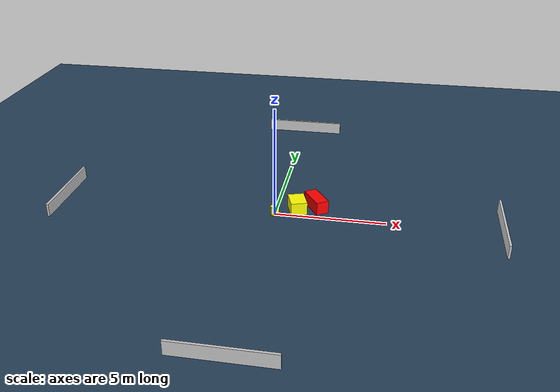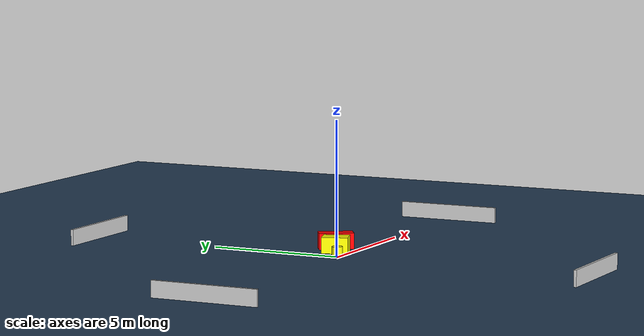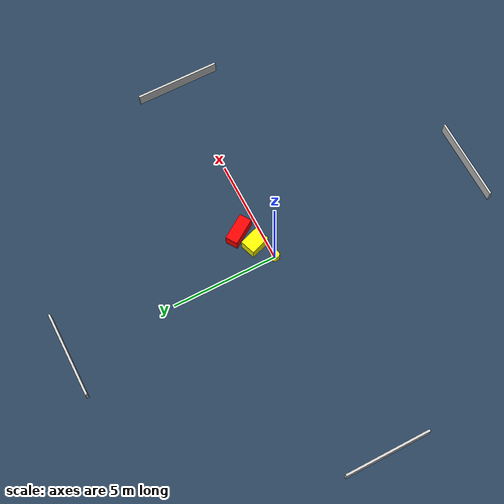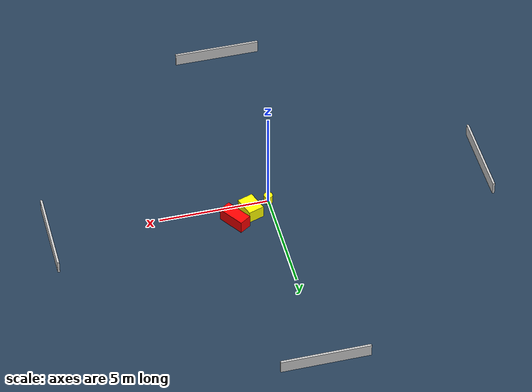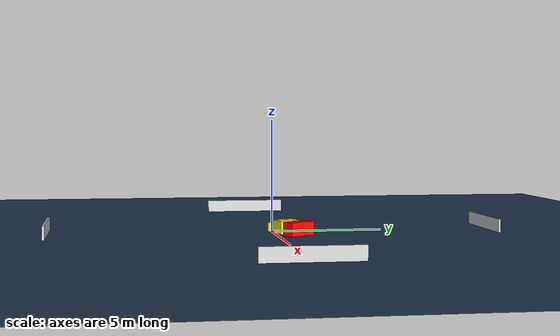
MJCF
<?xml version="1.0" ?>
<mujoco model="generated_environment">
  <option timestep="0.01" integrator="RK4" cone="elliptic"/>
  <default>
    <geom density="1"/>
  </default>
  <asset>
    <texture builtin="gradient" height="3072" name="skybox" rgb1="0.3 0.5 0.7" rgb2="0 0 0" type="skybox" width="512"/>
    <texture builtin="checker" height="300" name="groundplane" rgb1="0.2 0.3 0.4" rgb2="0.1 0.2 0.3" type="2d" width="300"/>
    <material name="groundplane" reflectance="0.2" texrepeat="5 5" texture="groundplane"/>
  </asset>
  <worldbody>
    <light dir="0 0 -1" directional="true" pos="0 0 1.5"/>
    <geom condim="3" friction="0.5 0.005 0.001" material="groundplane" name="floor" pos="0 0 0" size="0 0 0.05" type="plane"/>
    <body name="walls">
      <geom name="wall_1" condim="4" pos="-10.0 0.0 0.3" rgba="0.800000011920929 0.800000011920929 0.800000011920929 1.0" size="0.05 2.0 0.3" type="box"/>
      <geom name="wall_2" condim="4" pos="10.0 0.0 0.3" rgba="0.800000011920929 0.800000011920929 0.800000011920929 1.0" size="0.05 2.0 0.3" type="box"/>
      <geom name="wall_3" condim="4" pos="0.0 -10.0 0.3" rgba="0.800000011920929 0.800000011920929 0.800000011920929 1.0" size="2.0 0.05 0.3" type="box"/>
      <geom name="wall_4" condim="4" pos="0.0 10.0 0.3" rgba="0.800000011920929 0.800000011920929 0.800000011920929 1.0" size="2.0 0.05 0.3" type="box"/>
    </body>
    <body name="robot">
      <joint name="joint_x" type="slide" pos="0 0 0" axis="1 0 0"/>
      <joint name="joint_y" type="slide" pos="0 0 0" axis="0 1 0"/>
      <geom name="robot" type="cylinder" pos="0.0 0.0 0.2" size="0.2 0.2 0.0" mass="5.0" friction="1.0 0.005 0.0001" condim="4" rgba="1.0 1.0 0.0 1.0"/>
    </body>
    <body name="obstacle_1_movable">
      <geom name="obstacle_1_movable" condim="4" pos="0.9459853346414274 0.5208958555737426 0.3" euler="0 0 198.83285835261447" friction="0.0 0.005 0.001" rgba="1.0 1.0 0.0 1.0" size="0.3690658275943291 0.4837934917353802 0.3" type="box" mass="0.1"/>
      <joint type="free"/>
    </body>
    <body name="obstacle_2_static">
      <geom name="obstacle_2_static" condim="4" pos="1.76762398359267 0.9175645497755928 0.3" euler="0 0 123.21732245118115" friction="0.0 0.005 0.001" rgba="1.0 0.0 0.0 1.0" size="0.650250963107714 0.2911932545436714 0.3" type="box"/>
    </body>
  </worldbody>
  <actuator>
    <motor name="actuator_x" joint="joint_x" gear="1" ctrlrange="-1 1"/>
    <motor name="actuator_y" joint="joint_y" gear="1" ctrlrange="-1 1"/>
  </actuator>
</mujoco>
